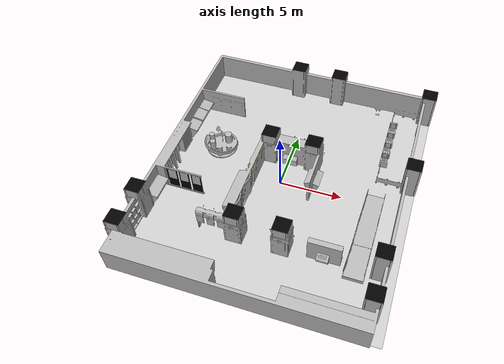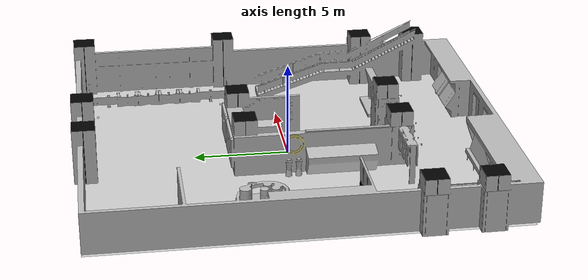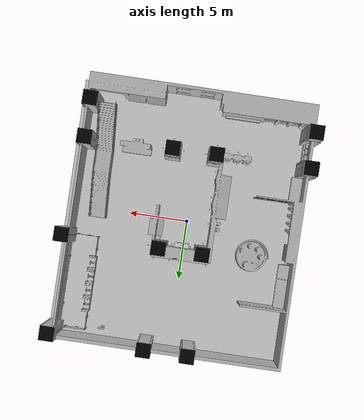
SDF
<sdf version="1.6">
 <world name="default">
  <light name="sun" type="directional">
   <pose>0 0 10 0 -0 0</pose>
   <diffuse>0.8 0.8 0.8 1</diffuse>
   <specular>0.2 0.2 0.2 1</specular>
   <attenuation>
    <range>1000</range>
    <constant>0.9</constant>
    <linear>0.01</linear>
    <quadratic>0.001</quadratic>
   </attenuation>
   <direction>-0.5 0.1 -0.9</direction>
  </light>
  <gravity>0 0 -9.8</gravity>
  <magnetic_field>6e-06 2.3e-05 -4.2e-05</magnetic_field>
  <atmosphere type="adiabatic"/>
  <physics name="default_physics" default="0" type="ode">
   <max_step_size>0.001</max_step_size>
   <real_time_factor>1</real_time_factor>
   <real_time_update_rate>1000</real_time_update_rate>
  </physics>
  <scene><ambient>0.4 0.4 0.4 1</ambient><background>0.7 0.7 0.7 1</background><shadows>1</shadows></scene>
  <spherical_coordinates>
   <surface_model>EARTH_WGS84</surface_model>
   <latitude_deg>0</latitude_deg>
   <longitude_deg>0</longitude_deg>
   <elevation>0</elevation>
   <heading_deg>0</heading_deg>
  </spherical_coordinates>
  <model name="iscas_museum">
   <link name="link">
    <inertial><mass>15</mass></inertial>
    <collision name="collision">
     <pose>0 0 0 0 0 -1.57</pose>
     <geometry><mesh><uri>../iscas_museum/meshes/ISCAS_museum.dae</uri></mesh></geometry>
    </collision>
    <visual name="visual">
     <pose>0 0 0 0 0 -1.57</pose>
     <geometry><mesh><uri>../iscas_museum/meshes/ISCAS_museum.dae</uri></mesh></geometry>
    </visual>
   </link>
   <static>1</static>
   <pose>-0.135953 -0.335522 0 0 -0 0</pose>
  </model>
  <model name="ISCAS_groundplane">
   <static>1</static>
   <link name="link">
    <collision name="collision">
     <geometry><plane><normal>0 0 1</normal><size>20 22</size></plane></geometry>
     <surface><friction><ode><mu>100</mu><mu2>50</mu2></ode></friction></surface>
    </collision>
    <visual name="visual">
     <cast_shadows>0</cast_shadows>
     <geometry><plane><normal>0 0 1</normal><size>20 22</size></plane></geometry>
    </visual>
   </link>
   <pose>0.447221 0.09218 0 0 -0 0</pose>
  </model>
 </world>
</sdf>
